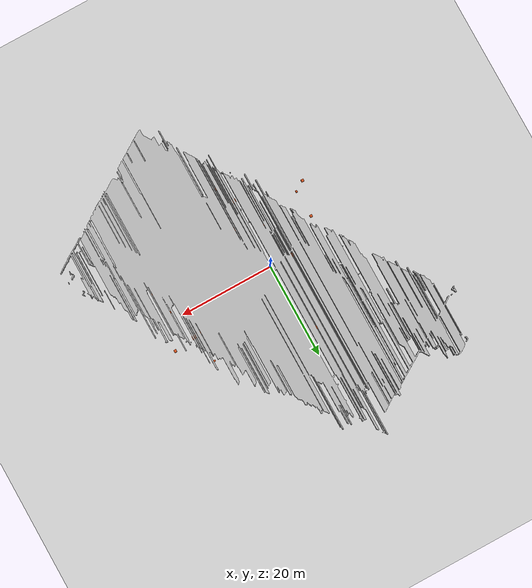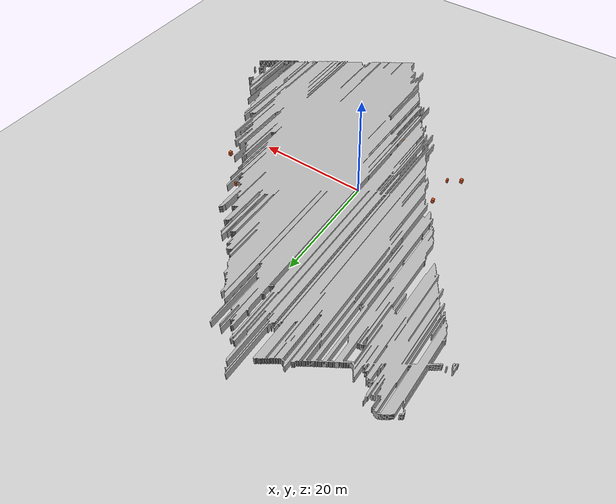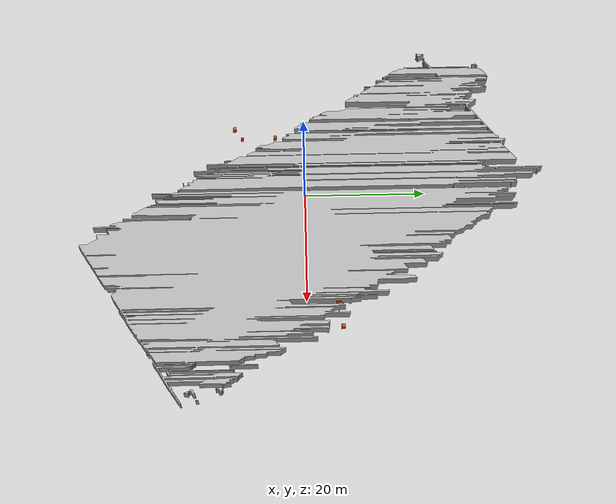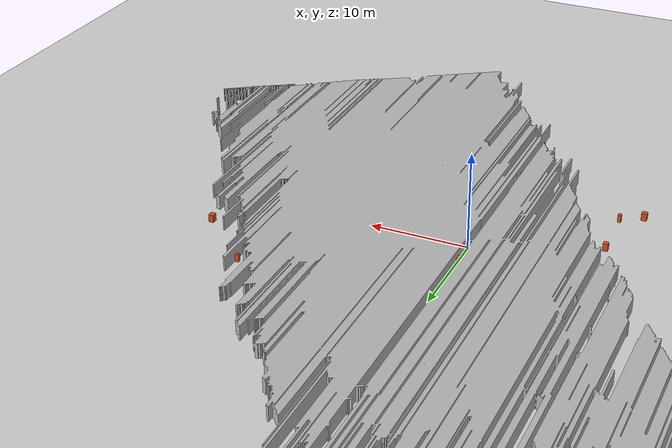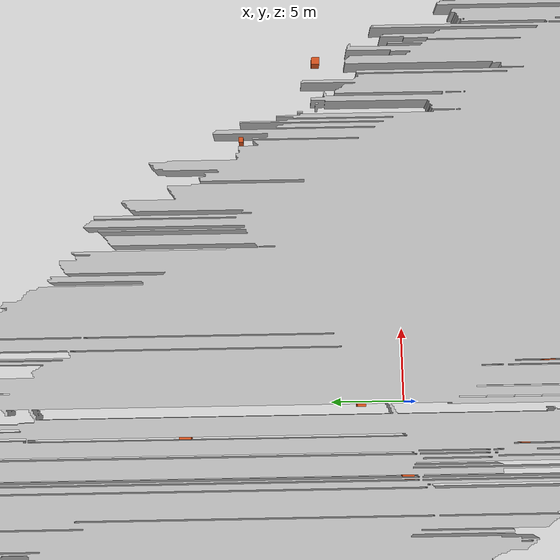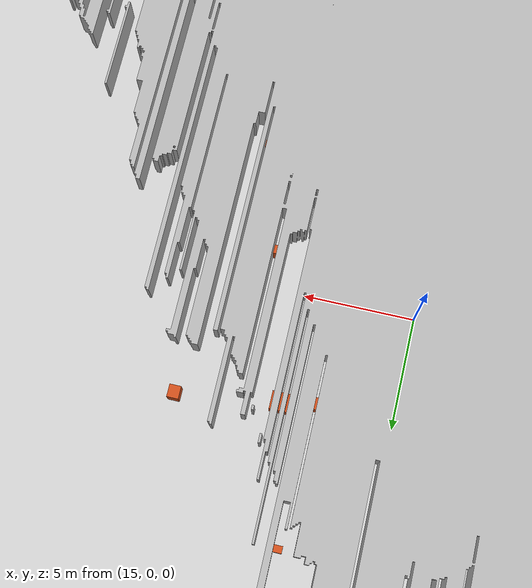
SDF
<?xml version="1.0"?>
<sdf version="1.6">
  <world name="real_map_harsh">
    <physics type="ode">
      <real_time_update_rate>1000.0</real_time_update_rate>
      <max_step_size>0.001</max_step_size>
      <real_time_factor>1</real_time_factor>
    </physics>
    <include><uri>model://sun</uri></include>
    <include><uri>model://ground_plane</uri></include>
    <model name="map_walls">
      <static>true</static>
      <pose>0 0 0 0 0 0</pose>
      <link name="link">
        <collision name="collision"><geometry><mesh>
          <uri>file:///home/seongmin/ros2_ws/src/sendbooster_agv_bringup/models/real_map_walls.stl</uri>
        </mesh></geometry></collision>
        <visual name="visual"><geometry><mesh>
          <uri>file:///home/seongmin/ros2_ws/src/sendbooster_agv_bringup/models/real_map_walls.stl</uri>
        </mesh></geometry>
          <material><ambient>0.7 0.7 0.7 1</ambient><diffuse>0.7 0.7 0.7 1</diffuse></material>
        </visual>
      </link>
    </model>

    <model name="obstacle_0">
      <static>true</static>
      <pose>0.00 3.00 0.4 0 0 0</pose>
      <link name="link">
        <collision name="c"><geometry><box><size>0.60 0.60 0.8</size></box></geometry></collision>
        <visual name="v"><geometry><box><size>0.60 0.60 0.8</size></box></geometry>
          <material><ambient>0.8 0.3 0.1 1</ambient><diffuse>0.8 0.3 0.1 1</diffuse></material>
        </visual>
      </link>
    </model>
    <model name="obstacle_1">
      <static>true</static>
      <pose>-5.00 0.00 0.4 0 0 0</pose>
      <link name="link">
        <collision name="c"><geometry><box><size>0.80 0.80 0.8</size></box></geometry></collision>
        <visual name="v"><geometry><box><size>0.80 0.80 0.8</size></box></geometry>
          <material><ambient>0.8 0.3 0.1 1</ambient><diffuse>0.8 0.3 0.1 1</diffuse></material>
        </visual>
      </link>
    </model>
    <model name="obstacle_2">
      <static>true</static>
      <pose>5.00 -5.00 0.4 0 0 0</pose>
      <link name="link">
        <collision name="c"><geometry><box><size>0.70 0.70 0.8</size></box></geometry></collision>
        <visual name="v"><geometry><box><size>0.70 0.70 0.8</size></box></geometry>
          <material><ambient>0.8 0.3 0.1 1</ambient><diffuse>0.8 0.3 0.1 1</diffuse></material>
        </visual>
      </link>
    </model>
    <model name="obstacle_3">
      <static>true</static>
      <pose>10.00 0.00 0.4 0 0 0</pose>
      <link name="link">
        <collision name="c"><geometry><box><size>0.60 0.60 0.8</size></box></geometry></collision>
        <visual name="v"><geometry><box><size>0.60 0.60 0.8</size></box></geometry>
          <material><ambient>0.8 0.3 0.1 1</ambient><diffuse>0.8 0.3 0.1 1</diffuse></material>
        </visual>
      </link>
    </model>
    <model name="obstacle_4">
      <static>true</static>
      <pose>-8.00 5.00 0.4 0 0 0</pose>
      <link name="link">
        <collision name="c"><geometry><box><size>0.50 0.50 0.8</size></box></geometry></collision>
        <visual name="v"><geometry><box><size>0.50 0.50 0.8</size></box></geometry>
          <material><ambient>0.8 0.3 0.1 1</ambient><diffuse>0.8 0.3 0.1 1</diffuse></material>
        </visual>
      </link>
    </model>
    <model name="obstacle_5">
      <static>true</static>
      <pose>3.00 -10.00 0.4 0 0 0</pose>
      <link name="link">
        <collision name="c"><geometry><box><size>0.80 0.80 0.8</size></box></geometry></collision>
        <visual name="v"><geometry><box><size>0.80 0.80 0.8</size></box></geometry>
          <material><ambient>0.8 0.3 0.1 1</ambient><diffuse>0.8 0.3 0.1 1</diffuse></material>
        </visual>
      </link>
    </model>
    <model name="obstacle_6">
      <static>true</static>
      <pose>-3.00 -8.00 0.4 0 0 0</pose>
      <link name="link">
        <collision name="c"><geometry><box><size>0.60 0.60 0.8</size></box></geometry></collision>
        <visual name="v"><geometry><box><size>0.60 0.60 0.8</size></box></geometry>
          <material><ambient>0.8 0.3 0.1 1</ambient><diffuse>0.8 0.3 0.1 1</diffuse></material>
        </visual>
      </link>
    </model>
    <model name="obstacle_7">
      <static>true</static>
      <pose>8.00 8.00 0.4 0 0 0</pose>
      <link name="link">
        <collision name="c"><geometry><box><size>0.70 0.70 0.8</size></box></geometry></collision>
        <visual name="v"><geometry><box><size>0.70 0.70 0.8</size></box></geometry>
          <material><ambient>0.8 0.3 0.1 1</ambient><diffuse>0.8 0.3 0.1 1</diffuse></material>
        </visual>
      </link>
    </model>
    <model name="obstacle_8">
      <static>true</static>
      <pose>15.00 -5.00 0.4 0 0 0</pose>
      <link name="link">
        <collision name="c"><geometry><box><size>0.60 0.60 0.8</size></box></geometry></collision>
        <visual name="v"><geometry><box><size>0.60 0.60 0.8</size></box></geometry>
          <material><ambient>0.8 0.3 0.1 1</ambient><diffuse>0.8 0.3 0.1 1</diffuse></material>
        </visual>
      </link>
    </model>
    <model name="obstacle_9">
      <static>true</static>
      <pose>-2.00 15.00 0.4 0 0 0</pose>
      <link name="link">
        <collision name="c"><geometry><box><size>0.80 0.80 0.8</size></box></geometry></collision>
        <visual name="v"><geometry><box><size>0.80 0.80 0.8</size></box></geometry>
          <material><ambient>0.8 0.3 0.1 1</ambient><diffuse>0.8 0.3 0.1 1</diffuse></material>
        </visual>
      </link>
    </model>
    <model name="obstacle_10">
      <static>true</static>
      <pose>12.00 10.00 0.4 0 0 0</pose>
      <link name="link">
        <collision name="c"><geometry><box><size>0.50 0.50 0.8</size></box></geometry></collision>
        <visual name="v"><geometry><box><size>0.50 0.50 0.8</size></box></geometry>
          <material><ambient>0.8 0.3 0.1 1</ambient><diffuse>0.8 0.3 0.1 1</diffuse></material>
        </visual>
      </link>
    </model>
    <model name="obstacle_11">
      <static>true</static>
      <pose>0.00 -15.00 0.4 0 0 0</pose>
      <link name="link">
        <collision name="c"><geometry><box><size>0.70 0.70 0.8</size></box></geometry></collision>
        <visual name="v"><geometry><box><size>0.70 0.70 0.8</size></box></geometry>
          <material><ambient>0.8 0.3 0.1 1</ambient><diffuse>0.8 0.3 0.1 1</diffuse></material>
        </visual>
      </link>
    </model>
    <model name="obstacle_12">
      <static>true</static>
      <pose>7.00 -12.00 0.4 0 0 0</pose>
      <link name="link">
        <collision name="c"><geometry><box><size>0.60 0.60 0.8</size></box></geometry></collision>
        <visual name="v"><geometry><box><size>0.60 0.60 0.8</size></box></geometry>
          <material><ambient>0.8 0.3 0.1 1</ambient><diffuse>0.8 0.3 0.1 1</diffuse></material>
        </visual>
      </link>
    </model>
    <model name="obstacle_13">
      <static>true</static>
      <pose>-12.00 -5.00 0.4 0 0 0</pose>
      <link name="link">
        <collision name="c"><geometry><box><size>0.50 0.50 0.8</size></box></geometry></collision>
        <visual name="v"><geometry><box><size>0.50 0.50 0.8</size></box></geometry>
          <material><ambient>0.8 0.3 0.1 1</ambient><diffuse>0.8 0.3 0.1 1</diffuse></material>
        </visual>
      </link>
    </model>
    <model name="obstacle_14">
      <static>true</static>
      <pose>20.00 5.00 0.4 0 0 0</pose>
      <link name="link">
        <collision name="c"><geometry><box><size>0.80 0.80 0.8</size></box></geometry></collision>
        <visual name="v"><geometry><box><size>0.80 0.80 0.8</size></box></geometry>
          <material><ambient>0.8 0.3 0.1 1</ambient><diffuse>0.8 0.3 0.1 1</diffuse></material>
        </visual>
      </link>
    </model>
    <model name="obstacle_15">
      <static>true</static>
      <pose>10.58 -19.00 0.4 0 0 0</pose>
      <link name="link">
        <collision name="c"><geometry><box><size>0.41 0.39 0.8</size></box></geometry></collision>
        <visual name="v"><geometry><box><size>0.41 0.39 0.8</size></box></geometry>
          <material><ambient>0.8 0.3 0.1 1</ambient><diffuse>0.8 0.3 0.1 1</diffuse></material>
        </visual>
      </link>
    </model>
    <model name="obstacle_16">
      <static>true</static>
      <pose>14.46 7.07 0.4 0 0 0</pose>
      <link name="link">
        <collision name="c"><geometry><box><size>0.66 0.33 0.8</size></box></geometry></collision>
        <visual name="v"><geometry><box><size>0.66 0.33 0.8</size></box></geometry>
          <material><ambient>0.8 0.3 0.1 1</ambient><diffuse>0.8 0.3 0.1 1</diffuse></material>
        </visual>
      </link>
    </model>
    <model name="obstacle_17">
      <static>true</static>
      <pose>1.88 -18.81 0.4 0 0 0</pose>
      <link name="link">
        <collision name="c"><geometry><box><size>0.39 0.50 0.8</size></box></geometry></collision>
        <visual name="v"><geometry><box><size>0.39 0.50 0.8</size></box></geometry>
          <material><ambient>0.8 0.3 0.1 1</ambient><diffuse>0.8 0.3 0.1 1</diffuse></material>
        </visual>
      </link>
    </model>
    <model name="obstacle_18">
      <static>true</static>
      <pose>-13.94 -12.05 0.4 0 0 0</pose>
      <link name="link">
        <collision name="c"><geometry><box><size>0.56 0.52 0.8</size></box></geometry></collision>
        <visual name="v"><geometry><box><size>0.56 0.52 0.8</size></box></geometry>
          <material><ambient>0.8 0.3 0.1 1</ambient><diffuse>0.8 0.3 0.1 1</diffuse></material>
        </visual>
      </link>
    </model>
    <model name="obstacle_19">
      <static>true</static>
      <pose>-6.18 3.57 0.4 0 0 0</pose>
      <link name="link">
        <collision name="c"><geometry><box><size>0.62 0.30 0.8</size></box></geometry></collision>
        <visual name="v"><geometry><box><size>0.62 0.30 0.8</size></box></geometry>
          <material><ambient>0.8 0.3 0.1 1</ambient><diffuse>0.8 0.3 0.1 1</diffuse></material>
        </visual>
      </link>
    </model>
    <model name="obstacle_20">
      <static>true</static>
      <pose>17.23 7.93 0.4 0 0 0</pose>
      <link name="link">
        <collision name="c"><geometry><box><size>0.44 0.36 0.8</size></box></geometry></collision>
        <visual name="v"><geometry><box><size>0.44 0.36 0.8</size></box></geometry>
          <material><ambient>0.8 0.3 0.1 1</ambient><diffuse>0.8 0.3 0.1 1</diffuse></material>
        </visual>
      </link>
    </model>
    <model name="obstacle_21">
      <static>true</static>
      <pose>23.29 -6.54 0.4 0 0 0</pose>
      <link name="link">
        <collision name="c"><geometry><box><size>0.34 0.34 0.8</size></box></geometry></collision>
        <visual name="v"><geometry><box><size>0.34 0.34 0.8</size></box></geometry>
          <material><ambient>0.8 0.3 0.1 1</ambient><diffuse>0.8 0.3 0.1 1</diffuse></material>
        </visual>
      </link>
    </model>
    <model name="obstacle_22">
      <static>true</static>
      <pose>18.90 4.15 0.4 0 0 0</pose>
      <link name="link">
        <collision name="c"><geometry><box><size>0.62 0.59 0.8</size></box></geometry></collision>
        <visual name="v"><geometry><box><size>0.62 0.59 0.8</size></box></geometry>
          <material><ambient>0.8 0.3 0.1 1</ambient><diffuse>0.8 0.3 0.1 1</diffuse></material>
        </visual>
      </link>
    </model>
    <model name="obstacle_23">
      <static>true</static>
      <pose>6.45 18.92 0.4 0 0 0</pose>
      <link name="link">
        <collision name="c"><geometry><box><size>0.45 0.52 0.8</size></box></geometry></collision>
        <visual name="v"><geometry><box><size>0.45 0.52 0.8</size></box></geometry>
          <material><ambient>0.8 0.3 0.1 1</ambient><diffuse>0.8 0.3 0.1 1</diffuse></material>
        </visual>
      </link>
    </model>
    <model name="obstacle_24">
      <static>true</static>
      <pose>18.18 4.74 0.4 0 0 0</pose>
      <link name="link">
        <collision name="c"><geometry><box><size>0.64 0.53 0.8</size></box></geometry></collision>
        <visual name="v"><geometry><box><size>0.64 0.53 0.8</size></box></geometry>
          <material><ambient>0.8 0.3 0.1 1</ambient><diffuse>0.8 0.3 0.1 1</diffuse></material>
        </visual>
      </link>
    </model>
    <model name="obstacle_25">
      <static>true</static>
      <pose>13.18 -18.17 0.4 0 0 0</pose>
      <link name="link">
        <collision name="c"><geometry><box><size>0.39 0.42 0.8</size></box></geometry></collision>
        <visual name="v"><geometry><box><size>0.39 0.42 0.8</size></box></geometry>
          <material><ambient>0.8 0.3 0.1 1</ambient><diffuse>0.8 0.3 0.1 1</diffuse></material>
        </visual>
      </link>
    </model>
    <model name="obstacle_26">
      <static>true</static>
      <pose>-11.81 -10.69 0.4 0 0 0</pose>
      <link name="link">
        <collision name="c"><geometry><box><size>0.34 0.41 0.8</size></box></geometry></collision>
        <visual name="v"><geometry><box><size>0.34 0.41 0.8</size></box></geometry>
          <material><ambient>0.8 0.3 0.1 1</ambient><diffuse>0.8 0.3 0.1 1</diffuse></material>
        </visual>
      </link>
    </model>
    <model name="obstacle_27">
      <static>true</static>
      <pose>10.43 -5.41 0.4 0 0 0</pose>
      <link name="link">
        <collision name="c"><geometry><box><size>0.45 0.38 0.8</size></box></geometry></collision>
        <visual name="v"><geometry><box><size>0.45 0.38 0.8</size></box></geometry>
          <material><ambient>0.8 0.3 0.1 1</ambient><diffuse>0.8 0.3 0.1 1</diffuse></material>
        </visual>
      </link>
    </model>
    <model name="obstacle_28">
      <static>true</static>
      <pose>-4.32 17.47 0.4 0 0 0</pose>
      <link name="link">
        <collision name="c"><geometry><box><size>0.56 0.54 0.8</size></box></geometry></collision>
        <visual name="v"><geometry><box><size>0.56 0.54 0.8</size></box></geometry>
          <material><ambient>0.8 0.3 0.1 1</ambient><diffuse>0.8 0.3 0.1 1</diffuse></material>
        </visual>
      </link>
    </model>
    <model name="obstacle_29">
      <static>true</static>
      <pose>-8.15 9.17 0.4 0 0 0</pose>
      <link name="link">
        <collision name="c"><geometry><box><size>0.37 0.45 0.8</size></box></geometry></collision>
        <visual name="v"><geometry><box><size>0.37 0.45 0.8</size></box></geometry>
          <material><ambient>0.8 0.3 0.1 1</ambient><diffuse>0.8 0.3 0.1 1</diffuse></material>
        </visual>
      </link>
    </model>
    <model name="obstacle_30">
      <static>true</static>
      <pose>24.58 5.60 0.4 0 0 0</pose>
      <link name="link">
        <collision name="c"><geometry><box><size>0.52 0.57 0.8</size></box></geometry></collision>
        <visual name="v"><geometry><box><size>0.52 0.57 0.8</size></box></geometry>
          <material><ambient>0.8 0.3 0.1 1</ambient><diffuse>0.8 0.3 0.1 1</diffuse></material>
        </visual>
      </link>
    </model>
    <model name="obstacle_31">
      <static>true</static>
      <pose>18.71 11.04 0.4 0 0 0</pose>
      <link name="link">
        <collision name="c"><geometry><box><size>0.39 0.31 0.8</size></box></geometry></collision>
        <visual name="v"><geometry><box><size>0.39 0.31 0.8</size></box></geometry>
          <material><ambient>0.8 0.3 0.1 1</ambient><diffuse>0.8 0.3 0.1 1</diffuse></material>
        </visual>
      </link>
    </model>
    <model name="obstacle_32">
      <static>true</static>
      <pose>-2.38 -9.29 0.4 0 0 0</pose>
      <link name="link">
        <collision name="c"><geometry><box><size>0.38 0.68 0.8</size></box></geometry></collision>
        <visual name="v"><geometry><box><size>0.38 0.68 0.8</size></box></geometry>
          <material><ambient>0.8 0.3 0.1 1</ambient><diffuse>0.8 0.3 0.1 1</diffuse></material>
        </visual>
      </link>
    </model>
    <model name="obstacle_33">
      <static>true</static>
      <pose>20.05 -7.41 0.4 0 0 0</pose>
      <link name="link">
        <collision name="c"><geometry><box><size>0.56 0.46 0.8</size></box></geometry></collision>
        <visual name="v"><geometry><box><size>0.56 0.46 0.8</size></box></geometry>
          <material><ambient>0.8 0.3 0.1 1</ambient><diffuse>0.8 0.3 0.1 1</diffuse></material>
        </visual>
      </link>
    </model>
    <model name="obstacle_34">
      <static>true</static>
      <pose>21.58 -1.65 0.4 0 0 0</pose>
      <link name="link">
        <collision name="c"><geometry><box><size>0.41 0.40 0.8</size></box></geometry></collision>
        <visual name="v"><geometry><box><size>0.41 0.40 0.8</size></box></geometry>
          <material><ambient>0.8 0.3 0.1 1</ambient><diffuse>0.8 0.3 0.1 1</diffuse></material>
        </visual>
      </link>
    </model>
  </world>
</sdf>
